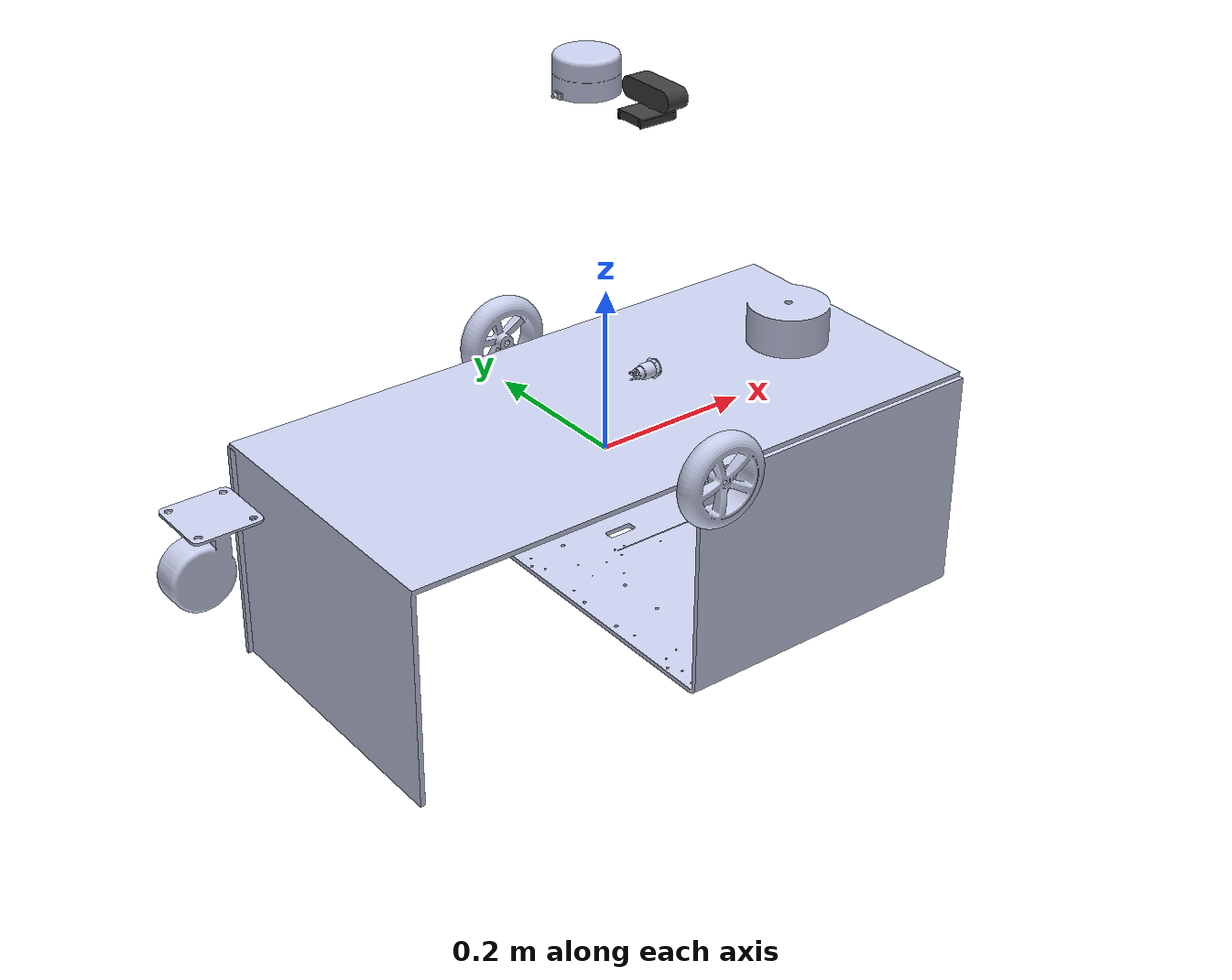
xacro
<?xml version="1.0" encoding="utf-8"?>
<robot
  name="rudolph_description">
  <link
    name="base_footprint">
    <visual>
      <origin
        xyz="0 0 0"
        rpy="0 0 0" />
      <geometry>
        <mesh
          filename="package://rudolph_description/meshes/base_footprint.STL" />
      </geometry>
      <material
        name="">
        <color
          rgba="0.792156862745098 0.819607843137255 0.933333333333333 1" />
      </material>
    </visual>
    <collision>
      <origin
        xyz="0 0 0"
        rpy="0 0 0" />
      <geometry>
        <mesh
          filename="package://rudolph_description/meshes/base_footprint.STL" />
      </geometry>
    </collision>
  </link>
  <link
    name="base_link">
    <inertial>
      <origin
        xyz="-0.198744010402315 0.000174583761450815 0.143169546471357"
        rpy="0 0 0" />
      <mass
        value="19.3571103115098" />
      <inertia
        ixx="0.105690677659532"
        ixy="0.000103743513668881"
        ixz="3.76767258085507E-05"
        iyy="0.322483556824621"
        iyz="-3.33675140826365E-06"
        izz="0.34473391633269" />
    </inertial>
    <visual>
      <origin
        xyz="0.0 0.0 0.0"
        rpy="0 0 0" />
      <geometry>
        <mesh
          filename="package://rudolph_description/meshes/base_link.STL" />
      </geometry>
      <material
        name="">
        <color
          rgba="0.792156862745098 0.819607843137255 0.933333333333333 1" />
      </material>
    </visual>
    <collision>
      <origin
        xyz="0 0 0"
        rpy="0 0 0" />
      <geometry>
        <mesh
          filename="package://rudolph_description/meshes/base_link.STL" />
      </geometry>
    </collision>
  </link>
  <joint
    name="base_joint"
    type="fixed">
    <origin
      xyz="0 0 0.055"
      rpy="0 0 0" />
    <parent
      link="base_footprint" />
    <child
      link="base_link" />
    <axis
      xyz="0 0 0" />
  </joint>
  <link
    name="wheel_left_link">
    <inertial>
      <origin
        xyz="5.65954616504882E-10 7.36872513007469E-09 -0.00280091247127531"
        rpy="0 0 0" />
      <mass
        value="0.168927903786118" />
      <inertia
        ixx="0.000180293267616765"
        ixy="3.49702912743621E-10"
        ixz="-5.96562390165147E-13"
        iyy="0.000180293249897517"
        iyz="-1.35611495762941E-11"
        izz="0.000340883721561127" />
    </inertial>
    <visual>
      <origin
        xyz="0 0 0"
        rpy="0 0 0" />
      <geometry>
        <mesh
          filename="package://rudolph_description/meshes/wheel_left_link.STL" />
      </geometry>
      <material
        name="">
        <color
          rgba="0.792156862745098 0.819607843137255 0.933333333333333 1" />
      </material>
    </visual>
    <collision>
      <origin
        xyz="0 0 0"
        rpy="0 0 0" />
      <geometry>
        <mesh
          filename="package://rudolph_description/meshes/wheel_left_link.STL" />
      </geometry>
    </collision>
  </link>
  <joint
    name="wheel_left_joint"
    type="continuous">
    <origin
      xyz="0.000243065284555088 0.208400000002307 0.000100106132487177"
      rpy="-1.5707963267949 0 0" />
    <parent
      link="base_link" />
    <child
      link="wheel_left_link" />
    <axis
      xyz="0 0 1" />
  </joint>
  <link
    name="wheel_right_link">
    <inertial>
      <origin
        xyz="5.66313440586441E-10 -7.36940622414473E-09 0.00280091247133624"
        rpy="0 0 0" />
      <mass
        value="0.168927903784547" />
      <inertia
        ixx="0.000180293267613993"
        ixy="-3.49703100507898E-10"
        ixz="5.9712037933952E-13"
        iyy="0.000180293249898242"
        iyz="-1.35621958235081E-11"
        izz="0.00034088372155933" />
    </inertial>
    <visual>
      <origin
        xyz="0 0 0"
        rpy="0 0 0" />
      <geometry>
        <mesh
          filename="package://rudolph_description/meshes/wheel_right_link.STL" />
      </geometry>
      <material
        name="">
        <color
          rgba="0.792156862745098 0.819607843137255 0.933333333333333 1" />
      </material>
    </visual>
    <collision>
      <origin
        xyz="0 0 0"
        rpy="0 0 0" />
      <geometry>
        <mesh
          filename="package://rudolph_description/meshes/wheel_right_link.STL" />
      </geometry>
    </collision>
  </link>
  <joint
    name="wheel_right_joint"
    type="continuous">
    <origin
      xyz="0.000243065284555311 -0.208399999997693 0.000100106132487593"
      rpy="-1.5707963267949 0 0" />
    <parent
      link="base_link" />
    <child
      link="wheel_right_link" />
    <axis
      xyz="0 0 1" />
  </joint>
  <link
    name="caster_back_link">
    <inertial>
      <origin
        xyz="0.00712939689443792 -0.0131605253570176 8.95324089172922E-09"
        rpy="0 0 0" />
      <mass
        value="0.205322871078586" />
      <inertia
        ixx="0.000181440969274869"
        ixy="3.79381726757464E-05"
        ixz="-4.39393075162352E-11"
        iyy="0.000117632047892804"
        iyz="2.10111827256733E-12"
        izz="0.000234531410256484" />
    </inertial>
    <visual>
      <origin
        xyz="0 0 0"
        rpy="0 0 0" />
      <geometry>
        <mesh
          filename="package://rudolph_description/meshes/caster_back_link.STL" />
      </geometry>
      <material
        name="">
        <color
          rgba="0.792156862745098 0.819607843137255 0.933333333333333 1" />
      </material>
    </visual>
    <collision>
      <origin
        xyz="0 0 0"
        rpy="0 0 0" />
      <geometry>
        <mesh
          filename="package://rudolph_description/meshes/caster_back_link.STL" />
      </geometry>
    </collision>
  </link>
  <joint
    name="caster_back_joint"
    type="fixed">
    <origin
      xyz="-0.529406195960553 0 -0.0224614324940508"
      rpy="-1.5707963267949 0 0" />
    <parent
      link="base_link" />
    <child
      link="caster_back_link" />
    <axis
      xyz="0 0 0" />
  </joint>
  <link
    name="camera_link">
    <inertial>
      <origin
        xyz="0.00593852099290992 5.09399578095537E-07 0.00784055172380349"
        rpy="0 0 0" />
      <mass
        value="0.0581895549431422" />
      <inertia
        ixx="2.149536557957E-05"
        ixy="-4.25271059883761E-10"
        ixz="-4.30001305453024E-08"
        iyy="7.2478764849786E-06"
        iyz="3.06968376267156E-10"
        izz="2.484439535279E-05" />
    </inertial>
    <visual>
      <origin
        xyz="0 0 0"
        rpy="0 0 0" />
      <geometry>
        <mesh
          filename="package://rudolph_description/meshes/camera_link.STL" />
      </geometry>
      <material
        name="">
        <color
          rgba="0.23921568627451 0.23921568627451 0.235294117647059 1" />
      </material>
    </visual>
    <collision>
      <origin
        xyz="0 0 0"
        rpy="0 0 0" />
      <geometry>
        <mesh
          filename="package://rudolph_description/meshes/camera_link.STL" />
      </geometry>
    </collision>
  </link>
  <joint
    name="camera_joint"
    type="fixed">
    <origin
      xyz="0.0537459832126193 0.000590752056278902 0.348100106132424"
      rpy="0 0 0" />
    <parent
      link="base_link" />
    <child
      link="camera_link" />
    <axis
      xyz="0 0 0" />
  </joint>
  <link
    name="base_scan">
    <inertial>
      <origin
        xyz="-0.000552750712992545 -0.000128923720693497 0.0237777439332361"
        rpy="0 0 0" />
      <mass
        value="0.170559484388225" />
      <inertia
        ixx="6.25710200235042E-05"
        ixy="3.56061446742664E-07"
        ixz="1.67650678582061E-08"
        iyy="6.29968977755568E-05"
        iyz="2.97146825579962E-08"
        izz="0.000112518091350319" />
    </inertial>
    <visual>
      <origin
        xyz="0 0 0"
        rpy="0 0 0" />
      <geometry>
        <mesh
          filename="package://rudolph_description/meshes/base_scan.STL" />
      </geometry>
      <material
        name="">
        <color
          rgba="0.792156862745098 0.819607843137255 0.933333333333333 1" />
      </material>
    </visual>
    <collision>
      <origin
        xyz="0 0 0"
        rpy="0 0 0" />
      <geometry>
        <mesh
          filename="package://rudolph_description/meshes/base_scan.STL" />
      </geometry>
    </collision>
  </link>
  <joint
    name="scan_joint"
    type="fixed">
    <origin
      xyz="-0.0273569347154501 0 0.385100106132424"
      rpy="0 0 0" />
    <parent
      link="base_link" />
    <child
      link="base_scan" />
    <axis
      xyz="0 0 0" />
  </joint>
  <joint name="imu_joint" type="fixed">
    <parent link="base_link"/>
    <child link="imu_link"/>
    <origin xyz="-0.032 0 0.068" rpy="0 0 0"/>
  </joint>

  <link name="imu_link"/>
</robot>
